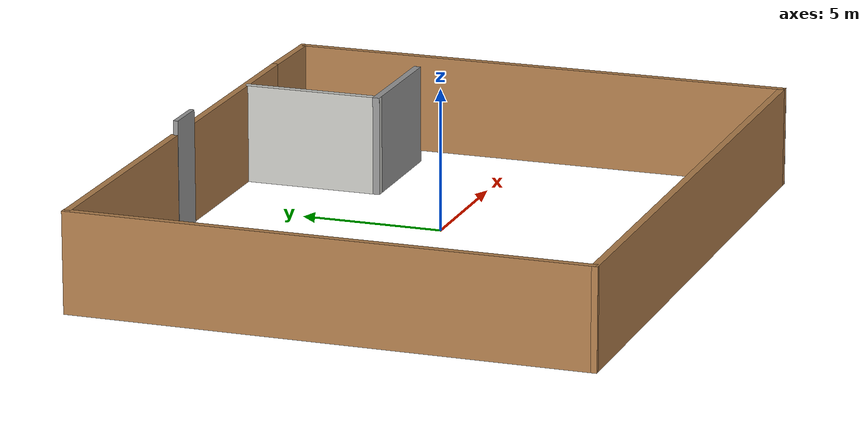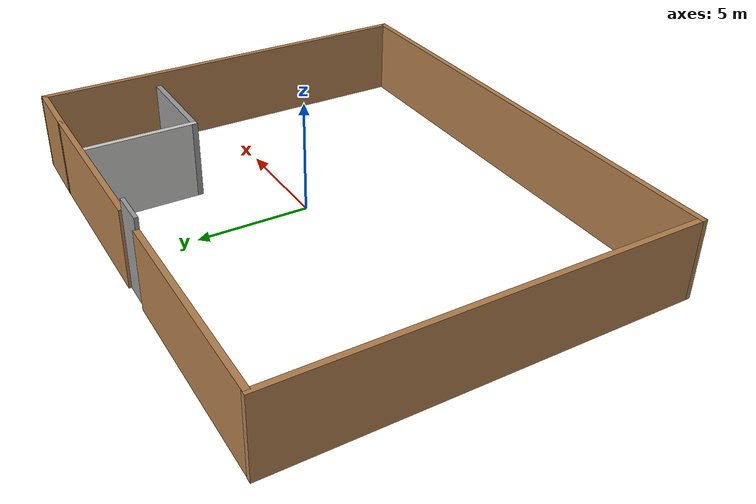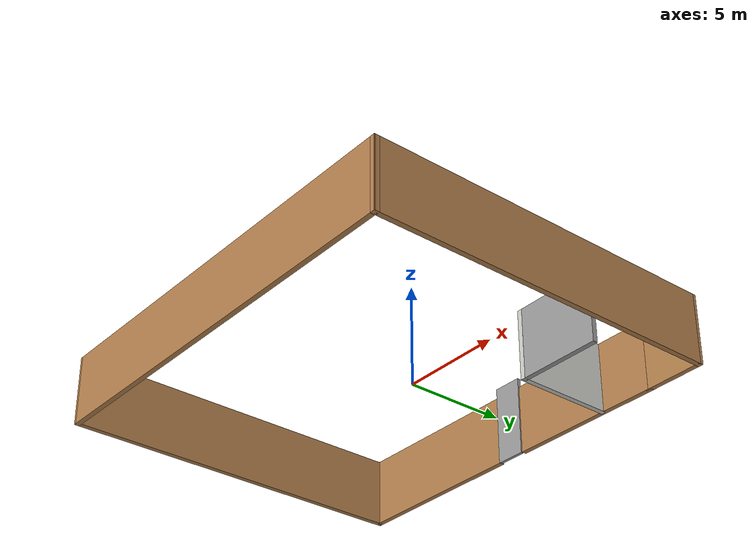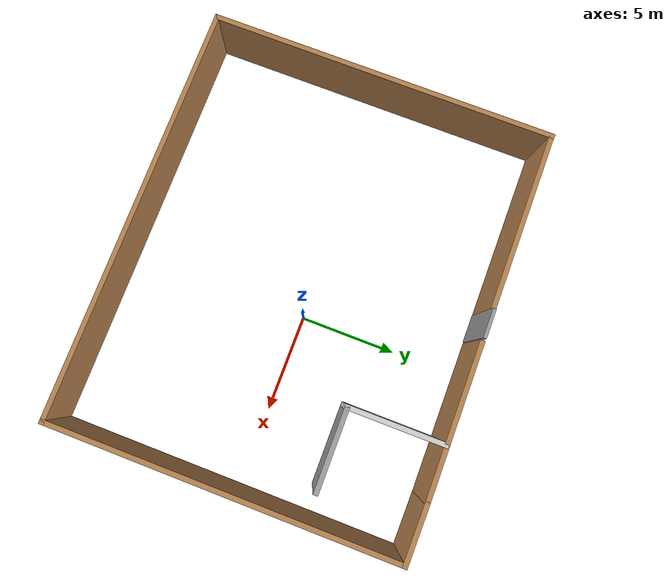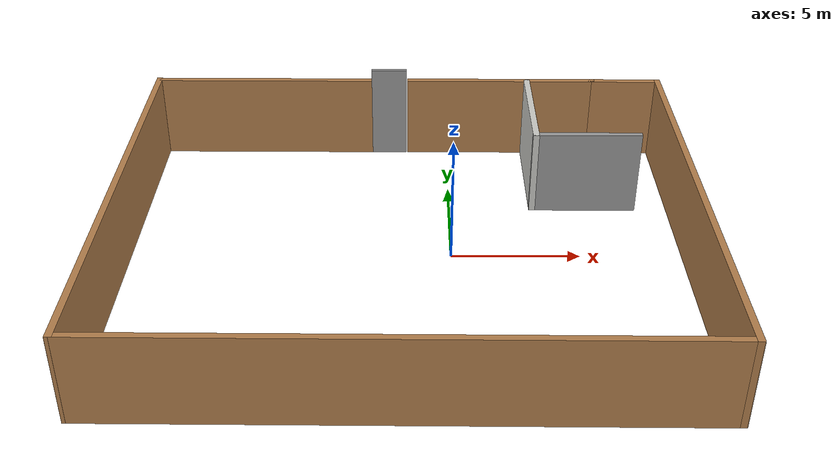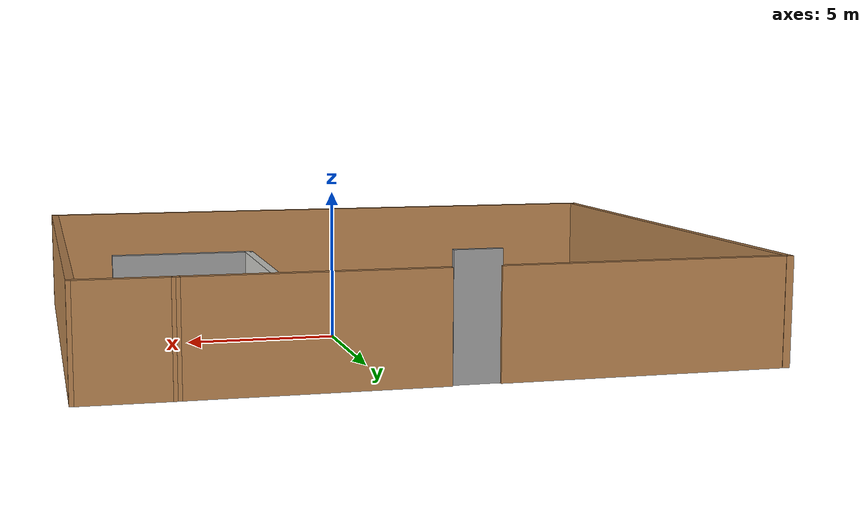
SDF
<?xml version='1.0'?>
<sdf version='1.6'>
  <model name='Building'>
    <pose frame=''>-1.7301 -0.535242 0 0 -0 0</pose>
    <link name='Door_0'>
      <collision name='Door_0_Collision'>
        <geometry>
          <box>
            <size>1.5 0.17 4</size>
          </box>
        </geometry>
        <pose frame=''>0 0 2 0 -0 0</pose>
      </collision>
      <visual name='Door_0_Visual'>
        <pose frame=''>0 0 2 0 -0 0</pose>
        <geometry>
          <box>
            <size>1.5 0.17 4</size>
          </box>
        </geometry>
        <material>
          <script>
            <uri>file://media/materials/scripts/gazebo.material</uri>
            <name>Gazebo/Grey</name>
          </script>
        </material>
      </visual>
      <pose frame=''>-0.815483 8.87818 0 0 -0 0</pose>
    </link>
    <link name='Wall_1'>
      <collision name='Wall_1_Collision'>
        <geometry>
          <box>
            <size>9.25 0.25 3.5</size>
          </box>
        </geometry>
        <pose frame=''>0 0 1.75 0 -0 0</pose>
      </collision>
      <visual name='Wall_1_Visual'>
        <pose frame=''>0 0 1.75 0 -0 0</pose>
        <geometry>
          <box>
            <size>9.25 0.25 3.5</size>
          </box>
        </geometry>
        <material>
          <script>
            <uri>file://media/materials/scripts/gazebo.material</uri>
            <name>Gazebo/Wood</name>
          </script>
          <ambient>1 1 1 1</ambient>
        </material>
        <meta>
          <layer>0</layer>
        </meta>
      </visual>
      <pose frame=''>-6.14568 8.92929 0 0 -0 0</pose>
    </link>
    <link name='Wall_13'>
      <collision name='Wall_13_Collision'>
        <geometry>
          <box>
            <size>0.15 0.15 2.5</size>
          </box>
        </geometry>
        <pose frame=''>0 0 1.25 0 -0 0</pose>
      </collision>
      <visual name='Wall_13_Visual'>
        <pose frame=''>0 0 1.25 0 -0 0</pose>
        <geometry>
          <box>
            <size>0.15 0.15 2.5</size>
          </box>
        </geometry>
        <material>
          <script>
            <uri>file://media/materials/scripts/gazebo.material</uri>
            <name>Gazebo/Grey</name>
          </script>
          <ambient>1 1 1 1</ambient>
        </material>
        <meta>
          <layer>0</layer>
        </meta>
      </visual>
      <pose frame=''>-10.7159 8.91724 0 0 -0 0</pose>
    </link>
    <link name='Wall_14'>
      <collision name='Wall_14_Collision'>
        <geometry>
          <box>
            <size>0.15 0.15 2.5</size>
          </box>
        </geometry>
        <pose frame=''>0 0 1.25 0 -0 0</pose>
      </collision>
      <visual name='Wall_14_Visual'>
        <pose frame=''>0 0 1.25 0 -0 0</pose>
        <geometry>
          <box>
            <size>0.15 0.15 2.5</size>
          </box>
        </geometry>
        <material>
          <script>
            <uri>file://media/materials/scripts/gazebo.material</uri>
            <name>Gazebo/Grey</name>
          </script>
          <ambient>1 1 1 1</ambient>
        </material>
        <meta>
          <layer>0</layer>
        </meta>
      </visual>
      <pose frame=''>-10.7159 8.91724 0 0 -0 0</pose>
    </link>
    <link name='Wall_17'>
      <collision name='Wall_17_Collision'>
        <geometry>
          <box>
            <size>5.10048 0.25 3.5</size>
          </box>
        </geometry>
        <pose frame=''>0 0 1.75 0 -0 0</pose>
      </collision>
      <visual name='Wall_17_Visual'>
        <pose frame=''>0 0 1.75 0 -0 0</pose>
        <geometry>
          <box>
            <size>5.10048 0.25 3.5</size>
          </box>
        </geometry>
        <material>
          <script>
            <uri>file://media/materials/scripts/gazebo.material</uri>
            <name>Gazebo/CeilingTiled</name>
          </script>
          <ambient>0 0 0 1</ambient>
        </material>
        <meta>
          <layer>0</layer>
        </meta>
      </visual>
      <pose frame=''>5.1471 6.47424 0 0 -0 -1.5708</pose>
    </link>
    <link name='Wall_18'>
      <collision name='Wall_18_Collision'>
        <geometry>
          <box>
            <size>4.35047 0.25 3.5</size>
          </box>
        </geometry>
        <pose frame=''>0 0 1.75 0 -0 0</pose>
      </collision>
      <visual name='Wall_18_Visual'>
        <pose frame=''>0 0 1.75 0 -0 0</pose>
        <geometry>
          <box>
            <size>4.35047 0.25 3.5</size>
          </box>
        </geometry>
        <material>
          <script>
            <uri>file://media/materials/scripts/gazebo.material</uri>
            <name>Gazebo/Grey</name>
          </script>
          <ambient>0 0 0 1</ambient>
        </material>
        <meta>
          <layer>0</layer>
        </meta>
      </visual>
      <pose frame=''>7.1971 4.04924 0 0 -0 0</pose>
    </link>
    <link name='Wall_3'>
      <collision name='Wall_3_Collision'>
        <geometry>
          <box>
            <size>8.09972 0.25 3.5</size>
          </box>
        </geometry>
        <pose frame=''>0 0 1.75 0 -0 0</pose>
      </collision>
      <visual name='Wall_3_Visual'>
        <pose frame=''>0 0 1.75 0 -0 0</pose>
        <geometry>
          <box>
            <size>8.09972 0.25 3.5</size>
          </box>
        </geometry>
        <material>
          <script>
            <uri>file://media/materials/scripts/gazebo.material</uri>
            <name>Gazebo/Wood</name>
          </script>
          <ambient>1 1 1 1</ambient>
        </material>
        <meta>
          <layer>0</layer>
        </meta>
      </visual>
      <pose frame=''>4.0241 8.94424 0 0 -0 0</pose>
    </link>
    <link name='Wall_4'>
      <collision name='Wall_4_Collision'>
        <geometry>
          <box>
            <size>3.10115 0.25 3.5</size>
          </box>
        </geometry>
        <pose frame=''>0 0 1.75 0 -0 0</pose>
      </collision>
      <visual name='Wall_4_Visual'>
        <pose frame=''>0 0 1.75 0 -0 0</pose>
        <geometry>
          <box>
            <size>3.10115 0.25 3.5</size>
          </box>
        </geometry>
        <material>
          <script>
            <uri>file://media/materials/scripts/gazebo.material</uri>
            <name>Gazebo/Wood</name>
          </script>
          <ambient>1 1 1 1</ambient>
        </material>
        <meta>
          <layer>0</layer>
        </meta>
      </visual>
      <pose frame=''>9.3741 8.92424 0 0 -0 -0.014034</pose>
    </link>
    <link name='Wall_5'>
      <collision name='Wall_5_Collision'>
        <geometry>
          <box>
            <size>18.1004 0.25 3.5</size>
          </box>
        </geometry>
        <pose frame=''>0 0 1.75 0 -0 0</pose>
      </collision>
      <visual name='Wall_5_Visual'>
        <pose frame=''>0 0 1.75 0 -0 0</pose>
        <geometry>
          <box>
            <size>18.1004 0.25 3.5</size>
          </box>
        </geometry>
        <material>
          <script>
            <uri>file://media/materials/scripts/gazebo.material</uri>
            <name>Gazebo/Wood</name>
          </script>
          <ambient>1 1 1 1</ambient>
        </material>
        <meta>
          <layer>0</layer>
        </meta>
      </visual>
      <pose frame=''>10.7991 -0.020758 0 0 -0 -1.5708</pose>
    </link>
    <link name='Wall_6'>
      <collision name='Wall_6_Collision'>
        <geometry>
          <box>
            <size>21.8503 0.25 3.5</size>
          </box>
        </geometry>
        <pose frame=''>0 0 1.75 0 -0 0</pose>
      </collision>
      <visual name='Wall_6_Visual'>
        <pose frame=''>0 0 1.75 0 -0 0</pose>
        <geometry>
          <box>
            <size>21.8503 0.25 3.5</size>
          </box>
        </geometry>
        <material>
          <script>
            <uri>file://media/materials/scripts/gazebo.material</uri>
            <name>Gazebo/Wood</name>
          </script>
          <ambient>1 1 1 1</ambient>
        </material>
        <meta>
          <layer>0</layer>
        </meta>
      </visual>
      <pose frame=''>-0.000902 -8.92576 0 0 -0 3.13974</pose>
    </link>
    <link name='Wall_7'>
      <collision name='Wall_7_Collision'>
        <geometry>
          <box>
            <size>18.1 0.25 3.5</size>
          </box>
        </geometry>
        <pose frame=''>0 0 1.75 0 -0 0</pose>
      </collision>
      <visual name='Wall_7_Visual'>
        <pose frame=''>0 0 1.75 0 -0 0</pose>
        <geometry>
          <box>
            <size>18.1 0.25 3.5</size>
          </box>
        </geometry>
        <material>
          <script>
            <uri>file://media/materials/scripts/gazebo.material</uri>
            <name>Gazebo/Wood</name>
          </script>
          <ambient>1 1 1 1</ambient>
        </material>
        <meta>
          <layer>0</layer>
        </meta>
      </visual>
      <pose frame=''>-10.8009 0.019242 0 0 -0 1.5708</pose>
    </link>
    <link name='Window_0'>
      <collision name='Window_0_Collision'>
        <geometry>
          <box>
            <size>0.8 0.17 0.8</size>
          </box>
        </geometry>
        <pose frame=''>0 0 0.4 0 -0 0</pose>
      </collision>
      <visual name='Window_0_Visual'>
        <pose frame=''>0 0 0.4 0 -0 0</pose>
        <geometry>
          <box>
            <size>0.8 0.17 0.8</size>
          </box>
        </geometry>
        <material>
          <script>
            <uri>file://media/materials/scripts/gazebo.material</uri>
            <name>Gazebo/Grey</name>
          </script>
        </material>
      </visual>
      <pose frame=''>8.40754 8.94648 0.5 0 -0 0</pose>
    </link>
    <static>1</static>
  </model>
</sdf>
